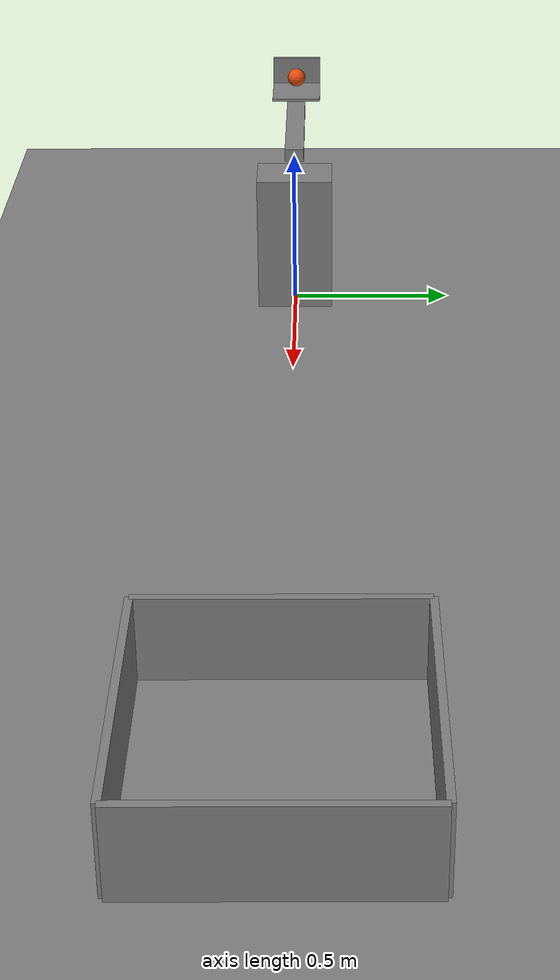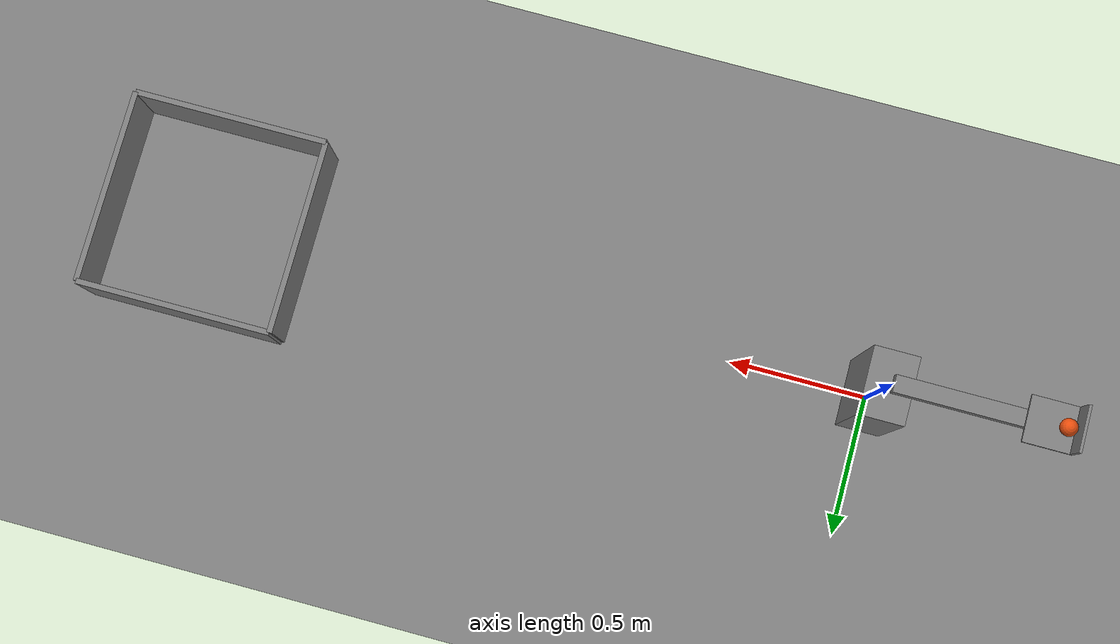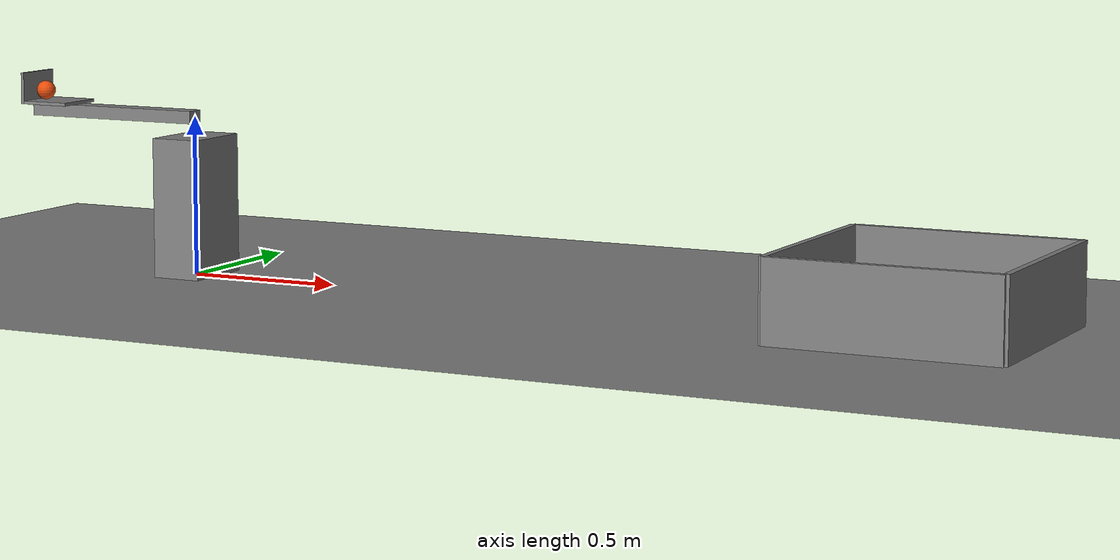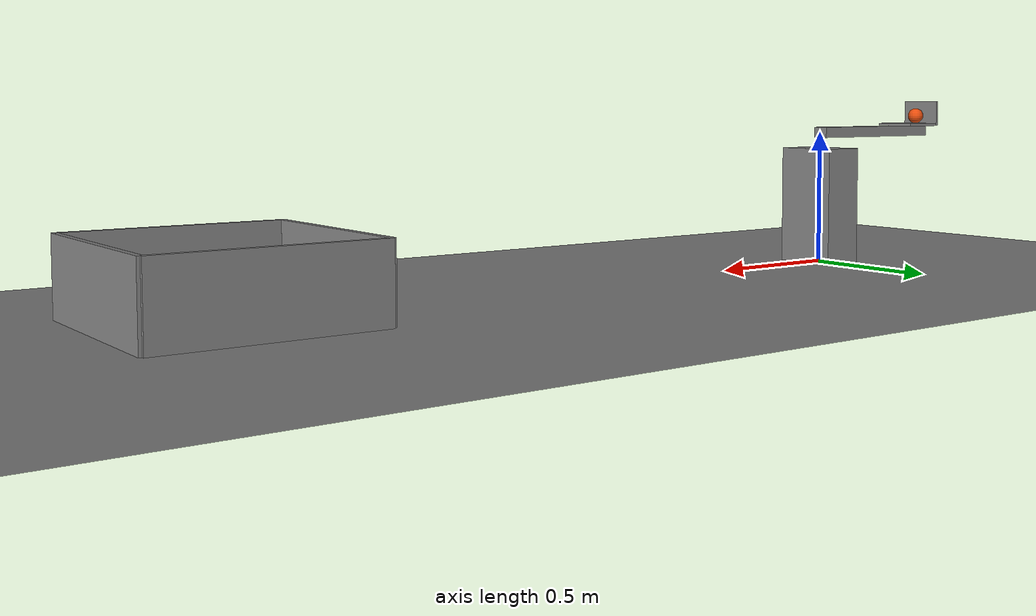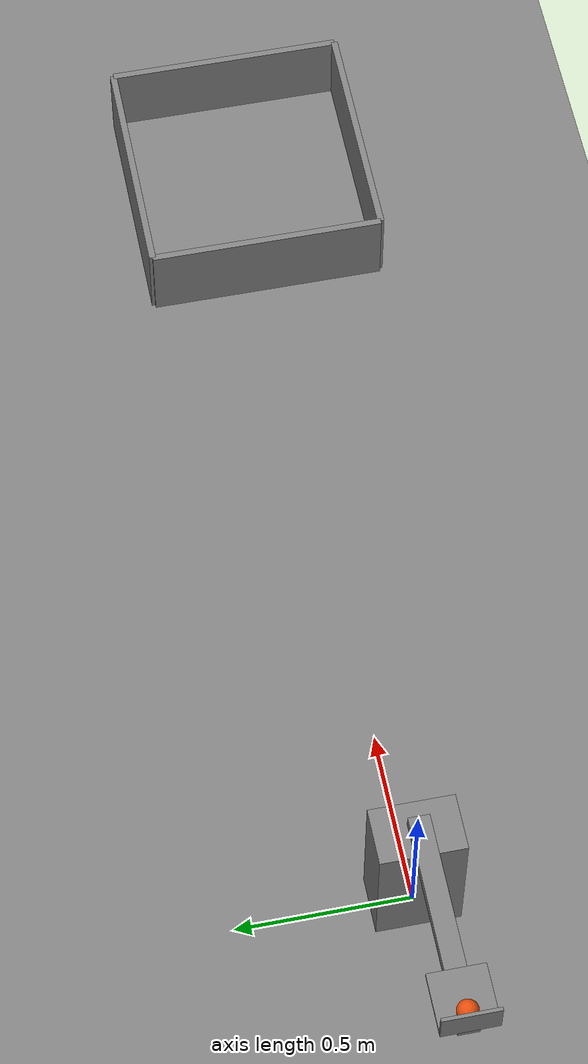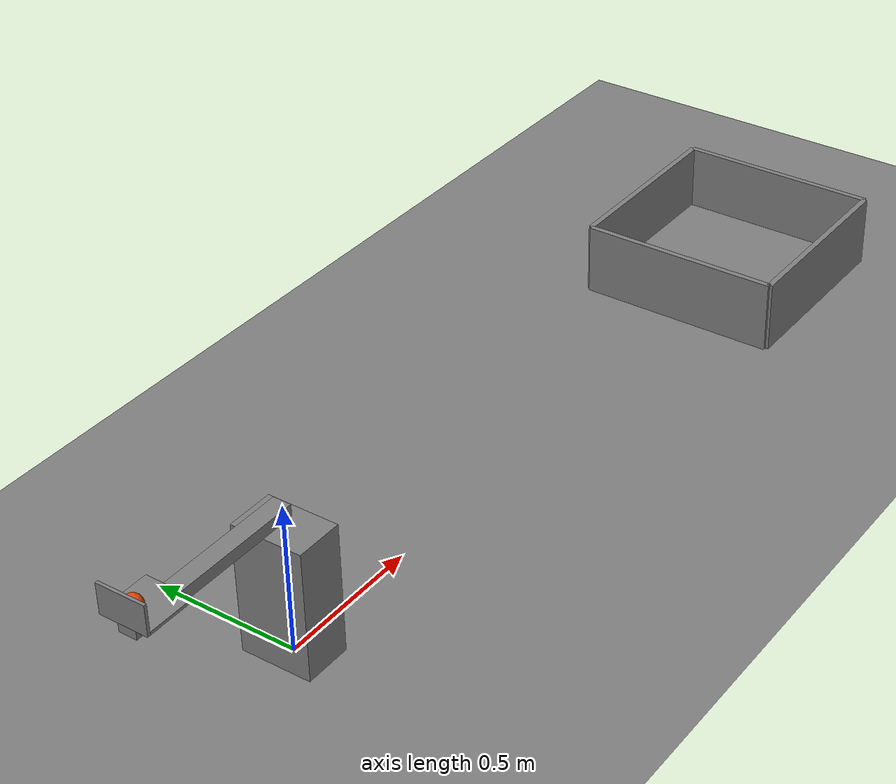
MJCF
<mujoco model="catapult_into_a_bucket">
  <compiler angle="radian"/>
  <option timestep="0.002"/>
  <worldbody>
    <geom name="floor" type="plane" size="8 8 0.1" friction="0.8 0.005 0.002"/>
    <geom name="catapult_stand" type="box" pos="0 0 0.22" size="0.08 0.12 0.22"/>
    <body name="catapult" pos="0 0 0.5">
      <joint name="catapult_hinge" type="hinge" pos="0 0 0" axis="0 1 0" limited="true" range="0 0.698132" stiffness="3.87" springref="1.5708" damping="0" armature="0.01"/>
      <geom name="catapult_arm" type="box" pos="-0.3 0 0" size="0.3 0.03 0.02" mass="0.3"/>
      <geom name="catapult_scoop_base" type="box" pos="-0.52 0 0.025" size="0.08 0.08 0.005" mass="0.02"/>
      <geom name="catapult_scoop_back" type="box" pos="-0.605 0 0.07" size="0.005 0.08 0.05" mass="0.01"/>
    </body>
    <body name="ball" pos="-0.57 0 0.56">
      <freejoint/>
      <geom name="ball" type="sphere" pos="0 0 0" size="0.03" mass="0.06" condim="6" friction="0.8 0.01 0.004" solref="0.01 1" rgba="0.9 0.3 0.05 1"/>
    </body>
    <body name="bucket">
      <geom name="bucket_base" type="box" pos="2.43 0 0.01" size="0.35 0.35 0.01"/>
      <geom name="bucket_near_wall" type="box" pos="2.08 0 0.125" size="0.01 0.35 0.125"/>
      <geom name="bucket_far_wall" type="box" pos="2.78 0 0.125" size="0.01 0.35 0.125"/>
      <geom name="bucket_left_wall" type="box" pos="2.43 0.35 0.125" size="0.35 0.01 0.125"/>
      <geom name="bucket_right_wall" type="box" pos="2.43 -0.35 0.125" size="0.35 0.01 0.125"/>
    </body>
  </worldbody>
  <keyframe>
    <key name="start" qpos="0 -0.57 0 0.56 1 0 0 0" qvel="0 0 0 0 0 0 0"/>
  </keyframe>
</mujoco>
